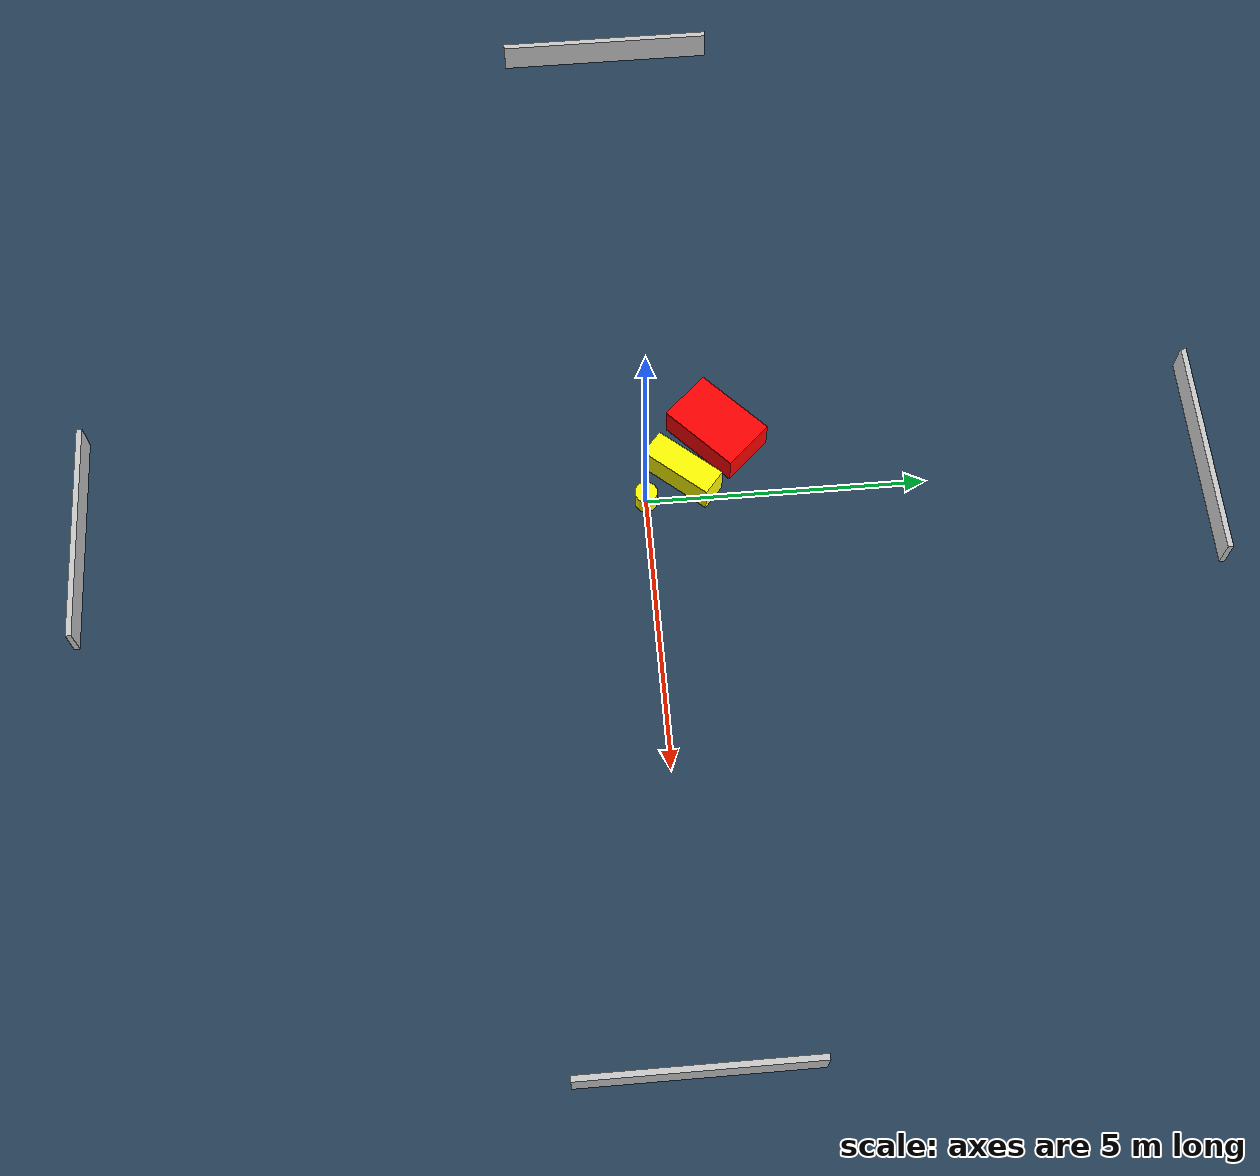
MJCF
<?xml version="1.0" ?>
<mujoco model="generated_environment">
  <option timestep="0.01" integrator="RK4" cone="elliptic"/>
  <default>
    <geom density="1"/>
  </default>
  <asset>
    <texture builtin="gradient" height="3072" name="skybox" rgb1="0.3 0.5 0.7" rgb2="0 0 0" type="skybox" width="512"/>
    <texture builtin="checker" height="300" name="groundplane" rgb1="0.2 0.3 0.4" rgb2="0.1 0.2 0.3" type="2d" width="300"/>
    <material name="groundplane" reflectance="0.2" texrepeat="5 5" texture="groundplane"/>
  </asset>
  <worldbody>
    <light dir="0 0 -1" directional="true" pos="0 0 1.5"/>
    <geom condim="3" friction="0.5 0.005 0.001" material="groundplane" name="floor" pos="0 0 0" size="0 0 0.05" type="plane"/>
    <body name="walls">
      <geom name="wall_1" condim="4" pos="-10.0 0.0 0.3" rgba="0.800000011920929 0.800000011920929 0.800000011920929 1.0" size="0.05 2.0 0.3" type="box"/>
      <geom name="wall_2" condim="4" pos="10.0 0.0 0.3" rgba="0.800000011920929 0.800000011920929 0.800000011920929 1.0" size="0.05 2.0 0.3" type="box"/>
      <geom name="wall_3" condim="4" pos="0.0 -10.0 0.3" rgba="0.800000011920929 0.800000011920929 0.800000011920929 1.0" size="2.0 0.05 0.3" type="box"/>
      <geom name="wall_4" condim="4" pos="0.0 10.0 0.3" rgba="0.800000011920929 0.800000011920929 0.800000011920929 1.0" size="2.0 0.05 0.3" type="box"/>
    </body>
    <body name="robot">
      <joint name="joint_x" type="slide" pos="0 0 0" axis="1 0 0"/>
      <joint name="joint_y" type="slide" pos="0 0 0" axis="0 1 0"/>
      <geom name="robot" type="cylinder" pos="0.0 0.0 0.2" size="0.2 0.2 0.0" mass="5.0" friction="1.0 0.005 0.0001" condim="4" rgba="1.0 1.0 0.0 1.0"/>
    </body>
    <body name="obstacle_1_movable">
      <geom name="obstacle_1_movable" condim="4" pos="-0.43827064415688166 0.6892430593292175 0.3" euler="0 0 49.41609634405529" friction="0.0 0.005 0.001" rgba="1.0 1.0 0.0 1.0" size="0.6851621415653582 0.2490704801741566 0.3" type="box" mass="0.1"/>
      <joint type="free"/>
    </body>
    <body name="obstacle_2_static">
      <geom name="obstacle_2_static" condim="4" pos="-1.2388965885502319 1.3702875363829758 0.3" euler="0 0 223.26884832408842" friction="0.0 0.005 0.001" rgba="1.0 0.0 0.0 1.0" size="0.7639401118352827 0.5017598621791346 0.3" type="box"/>
    </body>
  </worldbody>
  <actuator>
    <motor name="actuator_x" joint="joint_x" gear="1" ctrlrange="-1 1"/>
    <motor name="actuator_y" joint="joint_y" gear="1" ctrlrange="-1 1"/>
  </actuator>
</mujoco>
